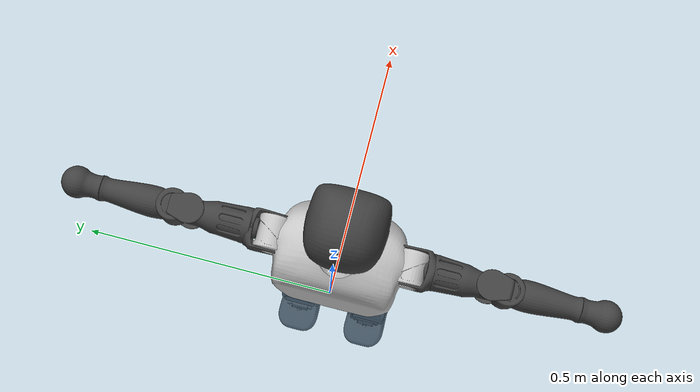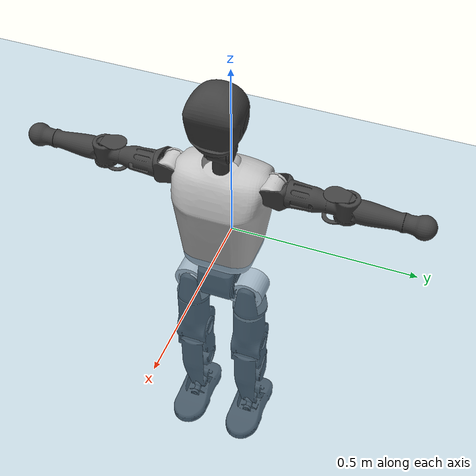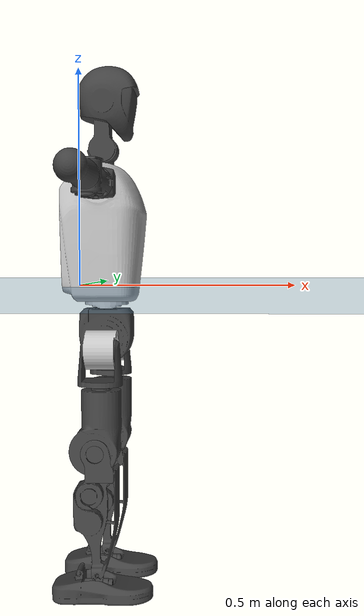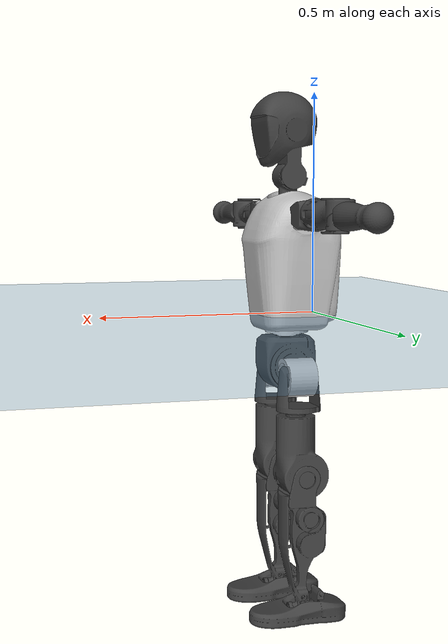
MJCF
<mujoco model="T1">
  <compiler angle="radian" assetdir="assets" balanceinertia="true" inertiafromgeom="false"/>

  <option timestep="0.005" density="1.2" viscosity="2e-05"/>

  <size nkey="1"/>

  <visual>
    <quality shadowsize="8192"/>
    <map shadowclip="0.5"/>
  </visual>

  <default>
    <default class="/">
      <joint armature="0.01" damping="0.01" frictionloss="0.1"/>
      <geom contype="0" conaffinity="0" group="1" solref="-1000 -80"/>
      <site size="0.01 0.005 0.005" group="5"/>
      <general forcelimited="true" biastype="affine" gainprm="25" biasprm="0 -25 -0.6"/>
      <default class="t1">
        <geom rgba="0.25 0.25 0.25 1"/>
        <default class="visual">
          <geom type="mesh" group="2"/>
        </default>
        <default class="collision">
          <geom group="3"/>
        </default>
        <default class="foot">
          <geom size="0.1115 0.05 0.015" type="box" condim="6" group="4" priority="1" solimp="0.015 1 0.015"/>
        </default>
        <default class="reward_collision_sphere">
          <geom group="5" rgba="1 0 0 1"/>
        </default>
      </default>
    </default>
  </default>

  <asset>
    <texture type="skybox" colorspace="auto" name="//unnamed_texture_0" builtin="gradient" rgb1="0.95 0.95 0.95" rgb2="0.95 0.95 0.95" width="100" height="600"/>
    <texture type="2d" colorspace="auto" name="texplane" builtin="checker" rgb1="0.345 0.575 0.748" rgb2="0.345 0.575 0.748" markrgb="1 1 1" width="512" height="512"/>
    <material name="MatPlane" class="/" texture="texplane" texuniform="true" texrepeat="2 2" specular="0.9"/>
    <mesh name="Trunk" class="/" file="Trunk.stl"/>
    <mesh name="H1" class="/" file="H1.stl"/>
    <mesh name="H2" class="/" file="H2.stl"/>
    <mesh name="AL1" class="/" file="AL1.stl"/>
    <mesh name="AL2" class="/" file="AL2.stl"/>
    <mesh name="AL3" class="/" file="AL3.stl"/>
    <mesh name="left_hand_link" class="/" file="left_hand_link.stl"/>
    <mesh name="AR1" class="/" file="AR1.stl"/>
    <mesh name="AR2" class="/" file="AR2.stl"/>
    <mesh name="AR3" class="/" file="AR3.stl"/>
    <mesh name="right_hand_link" class="/" file="right_hand_link.stl"/>
    <mesh name="Waist" class="/" file="Waist.stl"/>
    <mesh name="Hip_Pitch_Left" class="/" file="Hip_Pitch_Left.stl"/>
    <mesh name="Hip_Roll_Left" class="/" file="Hip_Roll_Left.stl"/>
    <mesh name="Hip_Yaw_Left" class="/" file="Hip_Yaw_Left.stl"/>
    <mesh name="Shank_Left" class="/" file="Shank_Left.stl"/>
    <mesh name="Ankle_Cross_Left" class="/" file="Ankle_Cross_Left.stl"/>
    <mesh name="left_foot_link" class="/" file="left_foot_link.stl"/>
    <mesh name="Hip_Pitch_Right" class="/" file="Hip_Pitch_Right.stl"/>
    <mesh name="Hip_Roll_Right" class="/" file="Hip_Roll_Right.stl"/>
    <mesh name="Hip_Yaw_Right" class="/" file="Hip_Yaw_Right.stl"/>
    <mesh name="Shank_Right" class="/" file="Shank_Right.stl"/>
    <mesh name="Ankle_Cross_Right" class="/" file="Ankle_Cross_Right.stl"/>
    <mesh name="right_foot_link" class="/" file="right_foot_link.stl"/>
  </asset>

  <worldbody>
    <geom name="floor" class="/" size="100 100 0.125" type="plane" group="0" material="MatPlane"/>
    <light name="toplight_shadow" class="/" pos="0 0 5" dir="0.0990148 0.0990148 -0.990148" type="directional" ambient="0.04 0.04 0.04" diffuse="0.55 0.55 0.55" specular="0.12 0.12 0.12"/>
    <light name="toplight_fill" class="/" pos="0 0 5" dir="0.0990148 0.0990148 -0.990148" type="directional" castshadow="false" ambient="0.04 0.04 0.04" diffuse="0.3 0.3 0.3" specular="0.08 0.08 0.08"/>
    <body name="trunk" childclass="t1" pos="0.000181292 -0.00260379 -0.00103037" quat="0.999999 0.000931325 0.000542031 0.000853234">
      <inertial pos="0.0542023 -0.00243082 0.108714" quat="0.999947 -0.00467003 6.4643e-05 0.00921479" mass="9.75605" diaginertia="0.100049 0.0228884 0.0670677"/>
      <joint name="//unnamed_joint_0" type="free" armature="0" damping="0" frictionloss="0"/>
      <geom name="//unnamed_geom_1" class="visual" rgba="0.76 0.76 0.76 1" mesh="Trunk"/>
      <geom name="//unnamed_geom_2" class="collision" size="0.0708602 0.0944803 0.14172" pos="0.0606979 0 0.12428" type="box"/>
      <geom name="//unnamed_geom_3" class="reward_collision_sphere" size="0.108652" pos="0.0606979 0 0.103566"/>
      <geom name="//unnamed_geom_4" class="reward_collision_sphere" size="0.014172" pos="0.0606979 0.0669046 0"/>
      <geom name="//unnamed_geom_5" class="reward_collision_sphere" size="0.014172" pos="0.0606979 -0.0669046 0"/>
      <geom name="//unnamed_geom_6" class="reward_collision_sphere" size="0.014172" pos="0.0606979 0.0842211 0.18642"/>
      <geom name="//unnamed_geom_7" class="reward_collision_sphere" size="0.014172" pos="0.0606979 -0.0842211 0.18642"/>
      <site name="imu" pos="0.0139896 -6.96084e-05 -0.014062" size="0.00944803"/>
      <camera name="track" pos="0 -1.57423 0" quat="0.707107 0.707107 0 0" mode="trackcom"/>
      <camera name="ego_camera" pos="0.123419 0 0.434979" quat="-0.5 -0.5 0.5 0.5"/>
      <body name="H1" pos="0.0600176 -0.000656497 0.25002" quat="1 -3.719e-05 -0.000235163 -0.000220575">
        <inertial pos="-0.00154478 -0.00042069 0.0593779" quat="0.763851 -0.0135862 0.00149149 0.645248" mass="0.372944" diaginertia="0.000248926 6.90105e-05 0.000177849"/>
        <joint name="AAHead_yaw" pos="0 0 0" axis="-0.000601285 -0.00061812 1" stiffness="0.00853939" range="-1.51217 1.55475" armature="0.0102814" damping="0.00494488" frictionloss="0.104072"/>
        <geom name="//unnamed_geom_8" class="visual" mesh="H1"/>
        <body name="H2" pos="-0.00347391 -0.000781805 0.06323" quat="0.999999 -0.000159137 0.000118473 -0.00104572">
          <inertial pos="0.00973811 -0.00187271 0.100965" quat="0.987487 0.11192 -0.0842505 -0.0724291" mass="0.540905" diaginertia="0.00210528 0.000566051 0.00204112"/>
          <joint name="Head_pitch" pos="0 0 0" axis="-0.000780956 -0.99998 0.00634464" range="-1.23676 0.339416" armature="0.0108468" damping="0" frictionloss="0.0908371"/>
          <geom name="//unnamed_geom_9" class="visual" mesh="H2"/>
          <geom name="//unnamed_geom_10" class="collision" size="0.0755843" pos="0.0101163 0 0.113923"/>
          <geom name="//unnamed_geom_11" class="reward_collision_sphere" size="0.0850323" pos="0.0202326 0 0.103566"/>
        </body>
      </body>
      <body name="AL1" pos="0.0593773 0.0827316 0.225119" quat="0.999999 -0.000373279 0.0010421 -0.000355268">
        <inertial pos="-0.00396279 0.0342153 0.000866089" quat="0.505396 0.495913 -0.503365 0.495246" mass="0.43142" diaginertia="0.00139849 0.000370806 0.000327157"/>
        <joint name="Left_Shoulder_Pitch" pos="0 0 0" axis="-0.00338717 0.999865 0.0161046" range="-3.35923 1.25174" armature="0.00955329" damping="0" frictionloss="0.106973"/>
        <geom name="//unnamed_geom_12" class="visual" rgba="0.76 0.76 0.76 1" mesh="AL1"/>
        <body name="AL2" pos="-0.00100872 0.0401165 0.00140197" quat="1 -0.000113322 -0.000339871 -0.000117332">
          <inertial pos="0.00188404 0.0318175 -0.00276932" quat="0.486821 0.511497 -0.487272 0.513752" mass="0.141497" diaginertia="0.000436824 0.000108231 0.000210478"/>
          <joint name="Left_Shoulder_Roll" pos="0 0 0" axis="-0.999998 6.0255e-05 0.00176364" range="-1.5228 1.72721" armature="0.0102498" damping="0.00172405" frictionloss="0.0930953"/>
          <geom name="//unnamed_geom_13" class="visual" mesh="AL2"/>
          <body name="AL3" pos="0.00243813 0.0478071 0.00304053" quat="1 3.06601e-05 -0.00010667 -0.000163228">
            <inertial pos="0.00187012 0.065437 0.00130853" quat="0.710572 0.703516 -0.0107025 -0.00611351" mass="0.812283" diaginertia="0.0135842 0.00370535 0.000690837"/>
            <joint name="Left_Elbow_Pitch" pos="0 0 0" axis="-0.0106441 -0.999911 -0.00798731" range="-2.30098 2.22638" armature="0.00969244" damping="0.0124886" frictionloss="0.0973531"/>
            <geom name="//unnamed_geom_14" class="visual" mesh="AL3"/>
            <geom name="//unnamed_geom_15" class="collision" size="0.0283441 0.0708602" pos="0 0.0393557 0" quat="0.707105 0.707108 0 0" type="cylinder"/>
            <geom name="//unnamed_geom_16" class="reward_collision_sphere" size="0.0340129"/>
            <body name="left_hand_link" pos="-2.97654e-05 0.115987 -0.00205415" quat="1 -0.00023555 0.000707109 -0.000110311">
              <inertial pos="-0.00151319 0.0886642 -0.000240191" quat="0.709068 0.705136 -0.00232518 0.00039249" mass="0.275746" diaginertia="0.00843163 0.00252949 0.000263592"/>
              <joint name="Left_Elbow_Yaw" pos="0 0 0" axis="0.00092338 4.38075e-05 1" range="-2.43273 -0.021004" armature="0.0097752" damping="0.0239199" frictionloss="0.0938463"/>
              <geom name="//unnamed_geom_17" class="visual" mesh="left_hand_link"/>
              <geom name="//unnamed_geom_18" class="collision" size="0.0283441 0.0826703" pos="0 0.102325 0" quat="0.707105 0.707108 0 0" type="cylinder"/>
              <geom name="//unnamed_geom_19" class="reward_collision_sphere" size="0.0472402"/>
              <geom name="//unnamed_geom_20" class="reward_collision_sphere" size="0.0330681" pos="0 0.0865824 0"/>
              <geom name="//unnamed_geom_21" class="reward_collision_sphere" size="0.0330681" pos="0 0.169229 0"/>
            </body>
          </body>
        </body>
      </body>
      <body name="AR1" pos="0.0595915 -0.0846909 0.226273" quat="1 0.000379235 -4.03426e-05 0.000759132">
        <inertial pos="-0.00349424 -0.0362563 -0.000464693" quat="0.495702 0.490597 -0.513071 0.500351" mass="0.440842" diaginertia="0.00136097 0.000383577 0.000347131"/>
        <joint name="Right_Shoulder_Pitch" pos="0 0 0" axis="0.00272257 -0.999901 0.0137941" range="-1.22309 3.25636" armature="0.0105395" damping="0" frictionloss="0.0827193"/>
        <geom name="//unnamed_geom_22" class="visual" rgba="0.76 0.76 0.76 1" mesh="AR1"/>
        <body name="AR2" pos="0.000984273 -0.0329656 -0.00271971" quat="0.999999 0.000968636 -0.000365059 -0.000352641">
          <inertial pos="0.00117911 -0.0310758 -0.00060926" quat="0.510129 0.497964 -0.507129 0.484376" mass="0.131918" diaginertia="0.000426517 0.000107198 0.000209926"/>
          <joint name="Right_Shoulder_Roll" pos="0 0 0" axis="-0.99997 0.00537457 0.00553144" stiffness="0.00216842" range="-1.7006 1.60619" armature="0.00946595" damping="0.0158922" frictionloss="0.0980154"/>
          <geom name="//unnamed_geom_23" class="visual" mesh="AR2"/>
          <body name="AR3" pos="0.0025397 -0.0462484 -0.000675144" quat="1 -1.46551e-05 4.08249e-05 1.32475e-06">
            <inertial pos="-0.00136221 -0.0692339 -0.0018715" quat="0.700442 0.713693 0.00438991 -0.00203567" mass="0.865015" diaginertia="0.0136923 0.00386633 0.000765732"/>
            <joint name="Right_Elbow_Pitch" pos="0 0 0" axis="0.0097974 0.999943 0.00420786" stiffness="0.00681549" range="-2.31353 2.21365" armature="0.00842036" damping="0.00639095" frictionloss="0.10787"/>
            <geom name="//unnamed_geom_24" class="visual" mesh="AR3"/>
            <geom name="//unnamed_geom_25" class="collision" size="0.0283441 0.0708602" pos="0 -0.0393557 0" quat="0.707105 0.707108 0 0" type="cylinder"/>
            <geom name="//unnamed_geom_26" class="reward_collision_sphere" size="0.0340129"/>
            <body name="right_hand_link" pos="0.000144611 -0.115369 0.0019715" quat="0.999999 0.00114899 -0.000515691 3.17448e-06">
              <inertial pos="-0.00150431 -0.0888142 0.00269976" quat="0.706383 0.707829 -0.000665871 0.000450358" mass="0.268566" diaginertia="0.00847856 0.00234898 0.000247747"/>
              <joint name="Right_Elbow_Yaw" pos="0 0 0" axis="0.00155742 0.010317 0.999946" range="0.017982 2.49777" armature="0.0106016" damping="0.000750784" frictionloss="0.107547"/>
              <geom name="//unnamed_geom_27" class="visual" mesh="right_hand_link"/>
              <geom name="//unnamed_geom_28" class="collision" size="0.0283441 0.0826703" pos="0 -0.102325 0" quat="0.707105 0.707108 0 0" type="cylinder"/>
              <geom name="//unnamed_geom_29" class="reward_collision_sphere" size="0.0472402"/>
              <geom name="//unnamed_geom_30" class="reward_collision_sphere" size="0.0330681" pos="0 -0.0865824 0"/>
              <geom name="//unnamed_geom_31" class="reward_collision_sphere" size="0.0330681" pos="0 -0.169229 0"/>
            </body>
          </body>
        </body>
      </body>
      <body name="Waist" pos="0.0635481 -0.0039801 -0.118143" quat="1 -4.28132e-06 1.2282e-05 1.52619e-06">
        <inertial pos="0.000503774 -0.00116774 0.0072822" quat="0.984544 0.00244388 -0.174705 0.0120715" mass="2.16005" diaginertia="0.0055808 0.00160498 0.00555411"/>
        <joint name="Waist" pos="0 0 0" axis="-0.00552221 0.00819519 0.999951" range="-1.57504 1.52765" armature="0.00906154" damping="0.0226621" frictionloss="0.105306"/>
        <geom name="//unnamed_geom_32" class="visual" mesh="Waist"/>
        <body name="Hip_Pitch_Left" pos="0.000530311 0.0825167 -0.000247462" quat="0.999999 0.000517919 -0.000201829 -0.000846263">
          <inertial pos="0.00134719 -0.00874582 -0.0178104" quat="0.975395 0.220045 0.0135123 0.00105383" mass="0.875711" diaginertia="0.00190838 0.000445145 0.00151622"/>
          <joint name="Left_Hip_Pitch" pos="0 0 0" axis="-0.00457243 0.999987 -0.00214441" range="-1.79018 1.59979" armature="0.0106038" damping="0" frictionloss="0.0968575"/>
          <geom name="//unnamed_geom_33" class="visual" rgba="0.76 0.76 0.76 1" mesh="Hip_Pitch_Left"/>
          <body name="Hip_Roll_Left" pos="-0.000332685 0.000102567 -0.0190256" quat="1 0.000598134 -9.83764e-05 -2.36811e-05">
            <inertial pos="-0.00148016 0.000123588 -0.055771" quat="0.703416 -0.00131877 -0.00613985 0.710751" mass="0.319251" diaginertia="0.00186463 0.000446637 0.000603834"/>
            <joint name="Left_Hip_Roll" pos="0 0 0" axis="-0.999986 -0.0038005 -0.00375834" stiffness="0.00567775" range="-1.52419 0.20325" armature="0.00827107" damping="0.0156602" frictionloss="0.0948047"/>
            <geom name="//unnamed_geom_34" class="visual" mesh="Hip_Roll_Left"/>
            <geom name="//unnamed_geom_35" class="reward_collision_sphere" size="0.0519642"/>
            <body name="Hip_Yaw_Left" pos="0.0034652 -0.00105518 -0.0882611" quat="1 -0.000360464 5.31509e-05 0.000331266">
              <inertial pos="-0.00814446 0.000151884 -0.0923781" quat="0.698507 -0.0354093 -0.0388444 0.713671" mass="1.73266" diaginertia="0.0274504 0.00750896 0.00301059"/>
              <joint name="Left_Hip_Yaw" pos="0 0 0" axis="-0.000973587 -0.00178154 -0.999998" range="-1.06592 1.01698" armature="0.00953108" damping="0.0209485" frictionloss="0.0895973"/>
              <geom name="//unnamed_geom_36" class="visual" mesh="Hip_Yaw_Left"/>
              <geom name="//unnamed_geom_37" class="collision" size="0.0472402 0.0755843" type="cylinder"/>
              <body name="Shank_Left" pos="-0.0144148 -0.00235699 -0.141607" quat="1 3.9484e-05 -4.25654e-05 0.00017773">
                <inertial pos="-0.0077354 -0.00202819 -0.127679" quat="0.997769 0.00731244 -0.0129289 0.0650936" mass="1.56156" diaginertia="0.0381035 0.0108378 0.0022379"/>
                <joint name="Left_Knee_Pitch" pos="0 0 0" axis="-0.00116569 0.999997 -0.00195897" stiffness="0.00208368" range="0.0308087 2.28645" armature="0.0103971" damping="0" frictionloss="0.0919071"/>
                <geom name="//unnamed_geom_38" class="visual" mesh="Shank_Left"/>
                <geom name="//unnamed_geom_39" class="collision" size="0.0472402 0.0708602" pos="0 0 -0.12428" type="cylinder"/>
                <geom name="//unnamed_geom_40" class="reward_collision_sphere" size="0.0614122"/>
                <body name="Ankle_Cross_Left" pos="0.00124397 0.00225737 -0.29303" quat="0.999999 -0.000424763 0.00045363 -0.000811473">
                  <inertial pos="-0.00613468 -0.000857366 -0.00748524" quat="0.441851 0.54936 0.544232 0.454734" mass="0.0618375" diaginertia="3.09668e-05 8.0457e-06 1.41055e-05"/>
                  <joint name="Left_Ankle_Pitch" pos="0 0 0" axis="-0.00086566 0.999921 -0.0125172" range="-0.875608 0.374837" armature="0.00858672" damping="0.0129746" frictionloss="0.089604"/>
                  <geom name="//unnamed_geom_41" class="visual" mesh="Ankle_Cross_Left"/>
                  <body name="left_foot_link" pos="-0.0025867 -0.00180031 -0.0139697" quat="1 2.84675e-05 0.000112078 3.43188e-05">
                    <inertial pos="0.0018161 0.00137046 -0.00848325" quat="0.0020084 0.62222 0.00139998 0.782838" mass="0.566445" diaginertia="0.00283318 0.000713047 0.00252655"/>
                    <joint name="Left_Ankle_Roll" pos="0 0 0" axis="-0.999981 -0.005187 0.00327913" stiffness="0.00265073" range="-0.442982 0.440021" armature="0.00833554" damping="0" frictionloss="0.0940881"/>
                    <geom name="//unnamed_geom_42" class="visual" mesh="left_foot_link"/>
                    <geom name="left_foot" class="foot" size="0.079299 0.0437808 0.0149746" pos="0.0101163 0 -0.015535"/>
                    <geom name="//unnamed_geom_44" class="reward_collision_sphere" size="0.0491298" pos="0.0101163 0 -0.015535"/>
                    <geom name="//unnamed_geom_45" class="reward_collision_sphere" size="0.0283441" pos="0.0961051 -0.0181036 -0.015535"/>
                    <geom name="//unnamed_geom_46" class="reward_collision_sphere" size="0.0283441" pos="-0.0708143 -0.0181036 -0.015535"/>
                    <site name="left_foot" class="foot" pos="0.0101163 0 -0.015535" size="0.00944803"/>
                  </body>
                </body>
              </body>
            </body>
          </body>
        </body>
        <body name="Hip_Pitch_Right" pos="-0.00289763 -0.0808907 -0.00230348" quat="1 0.000279016 0.000151245 -0.000437378">
          <inertial pos="0.000782409 0.00549169 -0.0181472" quat="0.972139 -0.23319 0.0165489 -0.0171699" mass="0.872096" diaginertia="0.00187083 0.000427401 0.00142807"/>
          <joint name="Right_Hip_Pitch" pos="0 0 0" axis="-0.00713121 -0.999972 -0.00227478" range="-1.62844 1.80973" armature="0.00827864" damping="0.00288481" frictionloss="0.101081"/>
          <geom name="//unnamed_geom_47" class="visual" rgba="0.76 0.76 0.76 1" mesh="Hip_Pitch_Right"/>
          <body name="Hip_Roll_Right" pos="-0.000334187 -0.00295303 -0.02275" quat="1 -9.51853e-06 8.28919e-06 4.03027e-06">
            <inertial pos="-0.000715987 0.00104089 -0.05696" quat="0.711105 -0.00283268 -0.0156114 0.702907" mass="0.336914" diaginertia="0.00192577 0.000466864 0.000622901"/>
            <joint name="Right_Hip_Roll" pos="0 0 0" axis="-1 -6.89164e-07 -0.000103593" range="-0.183039 1.56011" armature="0.0105452" damping="0.00455527" frictionloss="0.0904818"/>
            <geom name="//unnamed_geom_48" class="visual" mesh="Hip_Roll_Right"/>
            <geom name="//unnamed_geom_49" class="reward_collision_sphere" size="0.0519642"/>
            <body name="Hip_Yaw_Right" pos="0.000345449 -0.00364329 -0.0856724" quat="1 0.000415797 -0.000403391 -8.79418e-05">
              <inertial pos="-0.00431341 -0.00275119 -0.0919191" quat="0.71422 -0.0316881 -0.0335448 0.698399" mass="1.86173" diaginertia="0.0283188 0.00768618 0.00308712"/>
              <joint name="Right_Hip_Yaw" pos="0 0 0" axis="0.000224673 0.00255974 -0.999997" range="-1.01008 0.951623" armature="0.00913187" damping="0.0213742" frictionloss="0.102757"/>
              <geom name="//unnamed_geom_50" class="visual" mesh="Hip_Yaw_Right"/>
              <geom name="//unnamed_geom_51" class="collision" size="0.0472402 0.0755843" type="cylinder"/>
              <body name="Shank_Right" pos="-0.0103903 0.00107423 -0.13839" quat="0.999999 -0.00012214 0.000620612 0.00078072">
                <inertial pos="-0.00605772 0.00285 -0.125681" quat="0.999209 -0.00317353 -0.0119302 -0.0378116" mass="1.45703" diaginertia="0.0358834 0.0106777 0.002357"/>
                <joint name="Right_Knee_Pitch" pos="0 0 0" axis="-0.00313719 -0.999967 0.00746903" range="-2.28983 -0.056387" armature="0.00966688" damping="0.020771" frictionloss="0.0855566"/>
                <geom name="//unnamed_geom_52" class="visual" mesh="Shank_Right"/>
                <geom name="//unnamed_geom_53" class="collision" size="0.0472402 0.0708602" pos="0 0 -0.12428" type="cylinder"/>
                <geom name="//unnamed_geom_54" class="reward_collision_sphere" size="0.0614122"/>
                <body name="Ankle_Cross_Right" pos="0.00347336 -0.00286648 -0.28908" quat="1 2.60828e-05 0.000232198 0.000203432">
                  <inertial pos="-0.00560912 -0.00113276 -0.00568162" quat="0.446382 0.55506 0.539815 0.448611" mass="0.0608084" diaginertia="3.09992e-05 7.75935e-06 1.3084e-05"/>
                  <joint name="Right_Ankle_Pitch" pos="0 0 0" axis="-0.000548396 -0.999973 -0.00732751" range="-0.398252 0.851025" armature="0.00898602" damping="0.00843916" frictionloss="0.0976451"/>
                  <geom name="//unnamed_geom_55" class="visual" mesh="Ankle_Cross_Right"/>
                  <body name="right_foot_link" pos="-0.000253216 -0.00257377 -0.0146518" quat="1 0.000116306 1.97796e-05 7.5401e-05">
                    <inertial pos="0.00104084 0.0015102 -0.0119174" quat="0.00244759 0.620251 0.00169098 0.784397" mass="0.567505" diaginertia="0.00282553 0.000721644 0.00251795"/>
                    <joint name="Right_Ankle_Roll" pos="0 0 0" axis="-0.999934 0.0111702 -0.00253445" range="-0.42772 0.43412" armature="0.0106183" damping="0.0117697" frictionloss="0.0812071"/>
                    <geom name="//unnamed_geom_56" class="visual" mesh="right_foot_link"/>
                    <geom name="right_foot" class="foot" size="0.0675701 0.0419615 0.0143931" pos="0.0101163 0 -0.015535"/>
                    <geom name="//unnamed_geom_58" class="reward_collision_sphere" size="0.0377921"/>
                    <geom name="//unnamed_geom_59" class="reward_collision_sphere" size="0.0283441" pos="0.0101163 0 -0.015535"/>
                    <geom name="//unnamed_geom_60" class="reward_collision_sphere" size="0.0283441" pos="0.0961051 0.0181036 -0.015535"/>
                    <geom name="//unnamed_geom_61" class="reward_collision_sphere" size="0.0283441" pos="-0.0708143 0.0181036 -0.015535"/>
                    <site name="right_foot" class="foot" pos="0.0101163 0 -0.015535" size="0.00944803"/>
                  </body>
                </body>
              </body>
            </body>
          </body>
        </body>
      </body>
    </body>
  </worldbody>

  <contact>
    <pair class="/" geom1="floor" geom2="left_foot" name="//unnamed_contact_0"/>
    <pair class="/" geom1="floor" geom2="right_foot" name="//unnamed_contact_1"/>
  </contact>

  <actuator>
    <general name="AAHead_yaw" class="/" joint="AAHead_yaw" forcerange="-5.94192 5.94192" gainprm="22.5064" biasprm="0 -22.5064 -0.523156"/>
    <general name="Head_pitch" class="/" joint="Head_pitch" forcerange="-7.31417 7.31417" gainprm="22.5064" biasprm="0 -22.5064 -0.523156"/>
    <general name="Left_Shoulder_Pitch" class="/" joint="Left_Shoulder_Pitch" forcerange="-17.1276 17.1276" gainprm="22.5064" biasprm="0 -22.5064 -0.523156"/>
    <general name="Left_Shoulder_Roll" class="/" joint="Left_Shoulder_Roll" forcerange="-18.3927 18.3927" gainprm="22.5064" biasprm="0 -22.5064 -0.523156"/>
    <general name="Left_Elbow_Pitch" class="/" joint="Left_Elbow_Pitch" forcerange="-17.648 17.648" gainprm="22.5064" biasprm="0 -22.5064 -0.523156"/>
    <general name="Left_Elbow_Yaw" class="/" joint="Left_Elbow_Yaw" forcerange="-16.7394 16.7394" gainprm="22.5064" biasprm="0 -22.5064 -0.523156"/>
    <general name="Right_Shoulder_Pitch" class="/" joint="Right_Shoulder_Pitch" forcerange="-17.0355 17.0355" gainprm="22.5064" biasprm="0 -22.5064 -0.523156"/>
    <general name="Right_Shoulder_Roll" class="/" joint="Right_Shoulder_Roll" forcerange="-15.9793 15.9793" gainprm="22.5064" biasprm="0 -22.5064 -0.523156"/>
    <general name="Right_Elbow_Pitch" class="/" joint="Right_Elbow_Pitch" forcerange="-17.396 17.396" gainprm="22.5064" biasprm="0 -22.5064 -0.523156"/>
    <general name="Right_Elbow_Yaw" class="/" joint="Right_Elbow_Yaw" forcerange="-16.636 16.636" gainprm="22.5064" biasprm="0 -22.5064 -0.523156"/>
    <general name="Waist" class="/" joint="Waist" forcerange="-26.1789 26.1789" gainprm="22.5064" biasprm="0 -22.5064 -0.523156"/>
    <general name="Left_Hip_Pitch" class="/" joint="Left_Hip_Pitch" forcerange="-40.2352 40.2352" gainprm="22.5064" biasprm="0 -22.5064 -0.523156"/>
    <general name="Left_Hip_Roll" class="/" joint="Left_Hip_Roll" forcerange="-28.7561 28.7561" gainprm="22.5064" biasprm="0 -22.5064 -0.523156"/>
    <general name="Left_Hip_Yaw" class="/" joint="Left_Hip_Yaw" forcerange="-28.3224 28.3224" gainprm="22.5064" biasprm="0 -22.5064 -0.523156"/>
    <general name="Left_Knee_Pitch" class="/" joint="Left_Knee_Pitch" forcerange="-51.187 51.187" gainprm="22.5064" biasprm="0 -22.5064 -0.523156"/>
    <general name="Left_Ankle_Pitch" class="/" joint="Left_Ankle_Pitch" forcerange="-19.6847 19.6847" gainprm="22.5064" biasprm="0 -22.5064 -0.523156"/>
    <general name="Left_Ankle_Roll" class="/" joint="Left_Ankle_Roll" forcerange="-13.8611 13.8611" gainprm="22.5064" biasprm="0 -22.5064 -0.523156"/>
    <general name="Right_Hip_Pitch" class="/" joint="Right_Hip_Pitch" forcerange="-42.6469 42.6469" gainprm="22.5064" biasprm="0 -22.5064 -0.523156"/>
    <general name="Right_Hip_Roll" class="/" joint="Right_Hip_Roll" forcerange="-25.6496 25.6496" gainprm="22.5064" biasprm="0 -22.5064 -0.523156"/>
    <general name="Right_Hip_Yaw" class="/" joint="Right_Hip_Yaw" forcerange="-30.2111 30.2111" gainprm="22.5064" biasprm="0 -22.5064 -0.523156"/>
    <general name="Right_Knee_Pitch" class="/" joint="Right_Knee_Pitch" forcerange="-58.391 58.391" gainprm="22.5064" biasprm="0 -22.5064 -0.523156"/>
    <general name="Right_Ankle_Pitch" class="/" joint="Right_Ankle_Pitch" forcerange="-18.6242 18.6242" gainprm="22.5064" biasprm="0 -22.5064 -0.523156"/>
    <general name="Right_Ankle_Roll" class="/" joint="Right_Ankle_Roll" forcerange="-13.886 13.886" gainprm="22.5064" biasprm="0 -22.5064 -0.523156"/>
  </actuator>

  <sensor>
    <gyro site="imu" name="imu_angular_velocity"/>
    <velocimeter site="imu" name="imu_linear_velocity"/>
    <framelinvel objtype="site" objname="left_foot" name="left_foot_global_linear_velocity"/>
    <framelinvel objtype="site" objname="right_foot" name="right_foot_global_linear_velocity"/>
  </sensor>

  <keyframe>
    <key name="home" qpos="0 0 0.6385 1 0 0 0 0 0 0 1.4 0 -0.4 0 -1.4 0 0.4 0 -0.4 0 0 0.8 -0.4 0 0.4 0 0 -0.8 0.4 0"/>
  </keyframe>
</mujoco>
